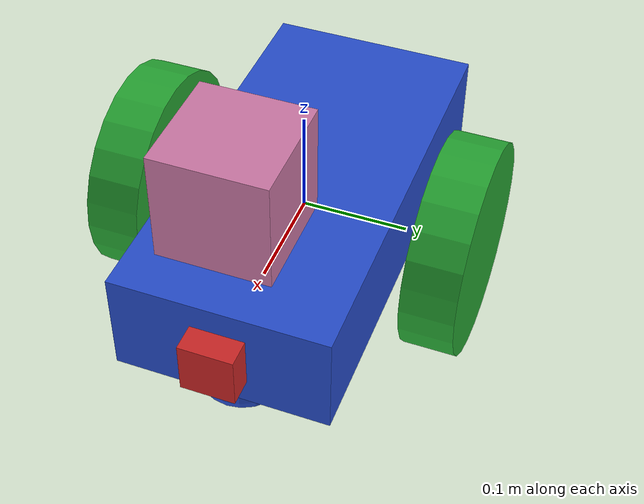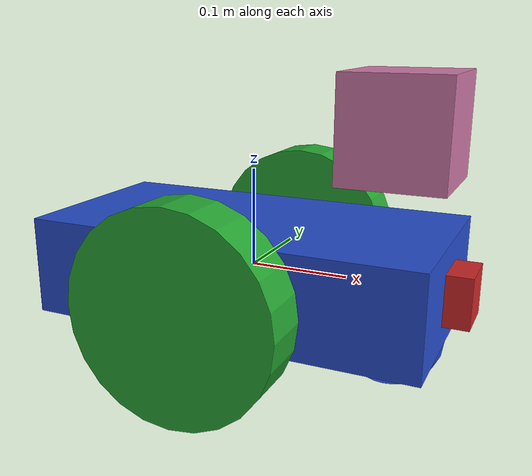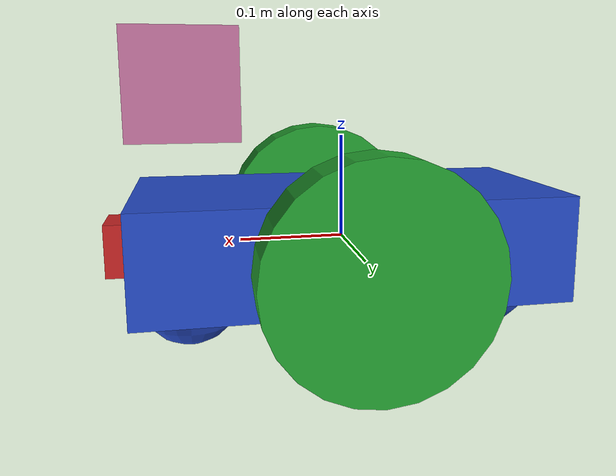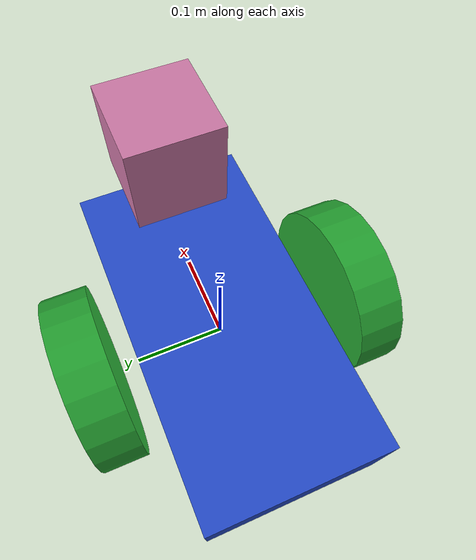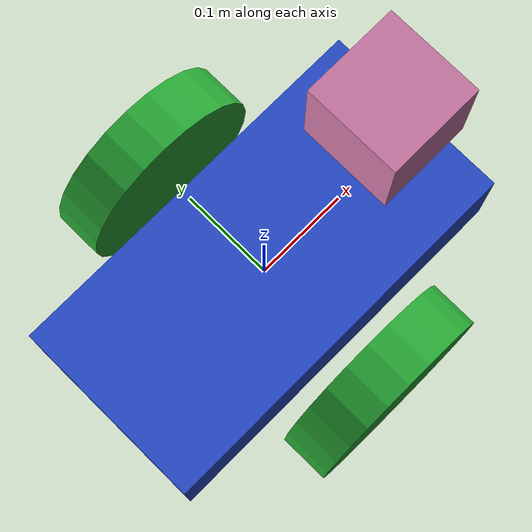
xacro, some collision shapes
<?xml version='1.0'?>

<robot name="udacity_bot" xmlns:xacro="http://www.ros.org/wiki/xacro">
 <xacro:include filename="$(find slam_project)/urdf/udacity_bot.gazebo" />

  <link name="robot_footprint"></link>

  <joint name="robot_footprint_joint" type="fixed">
    <origin xyz="0 0 0" rpy="0 0 0" />
    <parent link="robot_footprint"/>
    <child link="chassis" />
  </joint>

  <link name='chassis'>
    <pose>0 0 0.1 0 0 0</pose>

    <inertial>
      <mass value="5.0"/>
      <origin xyz="0.0 0 0" rpy=" 0 0 0"/>
      <inertia
          ixx="0.1" ixy="0" ixz="0"
          iyy="0.1" iyz="0"
          izz="0.1"
      />
    </inertial>

    <collision name='collision'>
      <origin xyz="0 0 0" rpy=" 0 0 0"/>
      <geometry>
        <box size=".4 .2 .1"/>
      </geometry>
    </collision>

    <visual name='chassis_visual'>
      <origin xyz="0 0 0" rpy=" 0 0 0"/>
      <geometry>
        <box size=".4 .2 .1"/>
      </geometry>
    </visual>

    <collision name='back_caster_collision'>
      <origin xyz="-0.15 0 -0.05" rpy=" 0 0 0"/>
      <geometry>
        <sphere radius="0.0499"/>
      </geometry>
      <surface>
        <friction>
          <ode>
            <mu>0</mu>
            <mu2>0</mu2>
            <slip1>1.0</slip1>
            <slip2>1.0</slip2>
          </ode>
        </friction>
      </surface>
    </collision>

    <visual name='back_caster_visual'>
      <origin xyz="-0.15 0 -0.05" rpy=" 0 0 0"/>
      <geometry>
        <sphere radius="0.05"/>
      </geometry>
    </visual>

    <collision name='front_caster_collision'>
      <origin xyz="0.15 0 -0.05" rpy=" 0 0 0"/>
      <geometry>
        <sphere radius="0.0499"/>
      </geometry>
      <surface>
        <friction>
          <ode>
            <mu>0</mu>
            <mu2>0</mu2>
            <slip1>1.0</slip1>
            <slip2>1.0</slip2>
          </ode>
        </friction>
      </surface>
    </collision>

    <visual name='front_caster_visual'>
      <origin xyz="0.15 0 -0.05" rpy=" 0 0 0"/>
      <geometry>
        <sphere radius="0.05"/>
      </geometry>
    </visual>

  </link>

 <link name='left_wheel'>

    <inertial>
      <mass value="5"/>
      <origin xyz="0 0 0" rpy=" 0 1.5707 1.5707"/>
      <inertia
          ixx="0.1" ixy="0" ixz="0"
          iyy="0.1" iyz="0"
          izz="0.1"
      />
    </inertial>

    <collision name='left_wheel_collision'>
      <origin xyz="0 0 0" rpy=" 0 1.5707 1.5707"/>
      <geometry>
        <cylinder length="0.05" radius="0.1"/>
      </geometry>
    </collision>

    <visual name='left_wheel_visual'>
      <origin xyz="0 0 0" rpy=" 0 1.5707 1.5707"/>
      <geometry>
        <cylinder length="0.05" radius="0.1"/>
      </geometry>
    </visual>

 </link>

 <link name='right_wheel'>

    <inertial>
      <mass value="5"/>
      <origin xyz="0 0 0" rpy=" 0 1.5707 1.5707"/>
      <inertia
          ixx="0.1" ixy="0" ixz="0"
          iyy="0.1" iyz="0"
          izz="0.1"
      />
    </inertial>

    <collision name='right_wheel_collision'>
      <origin xyz="0 0 0" rpy=" 0 1.5707 1.5707"/>
      <geometry>
        <cylinder length="0.05" radius="0.1"/>
      </geometry>
    </collision>

    <visual name='right_wheel_visual'>
      <origin xyz="0 0 0" rpy=" 0 1.5707 1.5707"/>
      <geometry>
        <cylinder length="0.05" radius="0.1"/>
      </geometry>
    </visual>
 </link>

<link name='camera_link'>
    <inertial>
      <mass value="0.1"/>
      <origin xyz="0 0 0" rpy=" 0 0 0"/>
      <inertia
          ixx="1e-6" ixy="0" ixz="0"
          iyy="1e-6" iyz="0"
          izz="1e-6"
      />
    </inertial>

    <collision name='camera_collision'>
      <origin xyz="0 0 0" rpy=" 0 0 0"/>
      <geometry>
        <box size="0.05 0.25 0.05"/>
      </geometry>
    </collision>

    <visual name='camera_visual'>
      <origin xyz="0 0 0" rpy=" 0 0 0"/>
      <geometry>
        <box size="0.05 0.05 0.05"/>
      </geometry>
      <material name="red"/>
    </visual>

 </link>

<link name='hokuyo'>

    <inertial>
      <mass value="0.1"/>
      <origin xyz="0 0 0" rpy=" 0 0 0"/>
      <inertia
          ixx="1e-6" ixy="0" ixz="0"
          iyy="1e-6" iyz="0"
          izz="1e-6"
      />
    </inertial>

    <collision name='hokuyo_collision'>
      <origin xyz="0 0 0" rpy=" 0 0 0"/>
      <geometry>
        <box size="0.1 0.1 0.1"/>
      </geometry>
    </collision>

    <visual name='hokuyo_visual'>
      <origin xyz="0 0 0" rpy=" 0 0 0"/>
      <geometry>
         <mesh filename="package://slam_project/meshes/hokuyo.dae"/>
      </geometry>
    </visual>

 </link>

<joint type="continuous" name="left_wheel_hinge">
    <origin xyz="0 0.15 0" rpy="0 0 0"/>
    <child link="left_wheel"/>
    <parent link="chassis"/>
    <axis xyz="0 1 0" rpy="0 0 0"/>
    <limit effort="10000" velocity="1000"/>
    <joint_properties damping="1.0" friction="1.0"/>
 </joint>

<joint type="continuous" name="right_wheel_hinge">
    <origin xyz="0 -0.15 0" rpy="0 0 0"/>
    <child link="right_wheel"/>
    <parent link="chassis"/>
    <axis xyz="0 1 0" rpy="0 0 0"/>
    <limit effort="10000" velocity="1000"/>
    <joint_properties damping="1.0" friction="1.0"/>
 </joint>

<joint type="fixed" name="camera_joint">
    <origin xyz="0.2 0 0" rpy="0 0 0"/>
    <child link="camera_link"/>
    <parent link="chassis"/>
 </joint>

<joint type="fixed" name="hokuyo_joint">
    <origin xyz=".15 0 .15" rpy="0 0 0"/>
    <child link="hokuyo"/>
    <parent link="chassis"/>
 </joint>

</robot>

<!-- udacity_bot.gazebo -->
<robot>

  <gazebo>
    <plugin name="differential_drive_controller" filename="libgazebo_ros_diff_drive.so">
      <legacyMode>false</legacyMode>
      <alwaysOn>true</alwaysOn>
      <updateRate>10</updateRate>
      <leftJoint>left_wheel_hinge</leftJoint>
      <rightJoint>right_wheel_hinge</rightJoint>
      <wheelSeparation>0.4</wheelSeparation>
      <wheelDiameter>0.2</wheelDiameter>
      <torque>10</torque>
      <commandTopic>cmd_vel</commandTopic>
      <odometryTopic>odom</odometryTopic>
      <odometryFrame>odom</odometryFrame>
      <robotBaseFrame>robot_footprint</robotBaseFrame>
    </plugin>
  </gazebo>

  <!-- generate an optical frame
      http://www.ros.org/reps/rep-0103.html#suffix-frames
      so that ros and opencv can operate on the camera frame correctly
      -->
  <joint name="camera_optical_joint" type="fixed">
    <!-- these values have to be these values otherwise the gazebo camera
        image won't be aligned properly with the frame it is supposedly
        originating from -->
    <origin xyz="0 0 0" rpy="${-pi/2} 0 ${-pi/2}"/>
    <parent link="camera_link"/>
    <child link="camera_link_optical"/>
  </joint>

  <link name="camera_link_optical">
  </link>
<!-- RGBD Camera -->
  <gazebo reference="camera_link">
    <sensor type="depth" name="camera1">
        <always_on>1</always_on>
        <update_rate>20.0</update_rate>
        <visualize>true</visualize>
        <camera>
            <horizontal_fov>1.047</horizontal_fov>
            <image>
                <width>640</width>
                <height>480</height>
                <format>R8G8B8</format>
            </image>
            <depth_camera>

            </depth_camera>
            <clip>
                <near>0.1</near>
                <far>20</far>
            </clip>
        </camera>
             <plugin name="camera_controller" filename="libgazebo_ros_openni_kinect.so">
             <alwaysOn>true</alwaysOn>
                <updateRate>10.0</updateRate>
                <cameraName>camera</cameraName>
                <frameName>camera_link_optical</frameName>
            <imageTopicName>/camera/rgb/image_raw</imageTopicName>
            <depthImageTopicName>/camera/depth/image_raw</depthImageTopicName>
            <pointCloudTopicName>/camera/depth/points</pointCloudTopicName>
            <cameraInfoTopicName>/camera/rgb/camera_info</cameraInfoTopicName>
            <depthImageCameraInfoTopicName>/camera/depth/camera_info</depthImageCameraInfoTopicName>
            <pointCloudCutoff>0.4</pointCloudCutoff>
                <hackBaseline>0.07</hackBaseline>
                <distortionK1>0.0</distortionK1>
                <distortionK2>0.0</distortionK2>
                <distortionK3>0.0</distortionK3>
                <distortionT1>0.0</distortionT1>
                <distortionT2>0.0</distortionT2>
            <CxPrime>0.0</CxPrime>
            <Cx>0.0</Cx>
            <Cy>0.0</Cy>
            <focalLength>0.0</focalLength>
            </plugin>
    </sensor>
  </gazebo>

  <!-- hokuyo -->
  <gazebo reference="hokuyo">
    <sensor type="ray" name="head_hokuyo_sensor">
      <pose>0 0 0 0 0 0</pose>
      <visualize>false</visualize>
      <update_rate>40</update_rate>
      <ray>
        <scan>
          <horizontal>
            <samples>720</samples>
            <resolution>1</resolution>
            <min_angle>-1.570796</min_angle>
            <max_angle>1.570796</max_angle>
          </horizontal>
        </scan>
        <range>
          <min>0.50</min>
          <max>32.0</max>
          <resolution>0.01</resolution>
        </range>
        <noise>
          <type>gaussian</type>
          <mean>0.0</mean>
          <stddev>0.01</stddev>
        </noise>
      </ray>
      <plugin name="gazebo_ros_head_hokuyo_controller" filename="libgazebo_ros_laser.so">
        <topicName>/scan</topicName>
        <frameName>hokuyo</frameName>
      </plugin>
    </sensor>
  </gazebo>

<gazebo reference="chassis">
   <material>Gazebo/Blue</material>
 </gazebo>

 <gazebo reference="left_wheel">
   <material>Gazebo/Green</material>
 </gazebo>

 <gazebo reference="right_wheel">
   <material>Gazebo/Green</material>
 </gazebo>

</robot>
